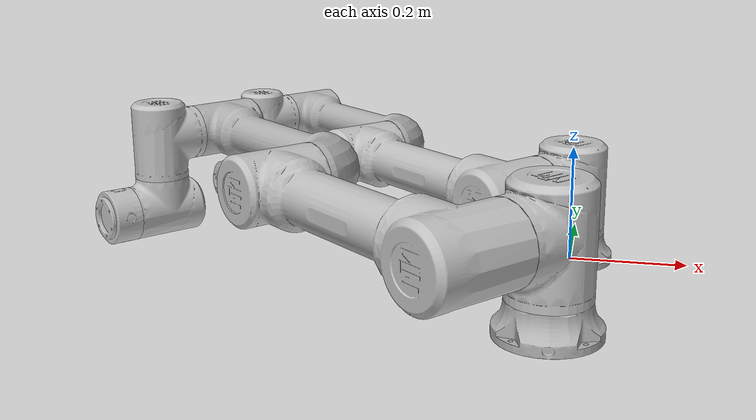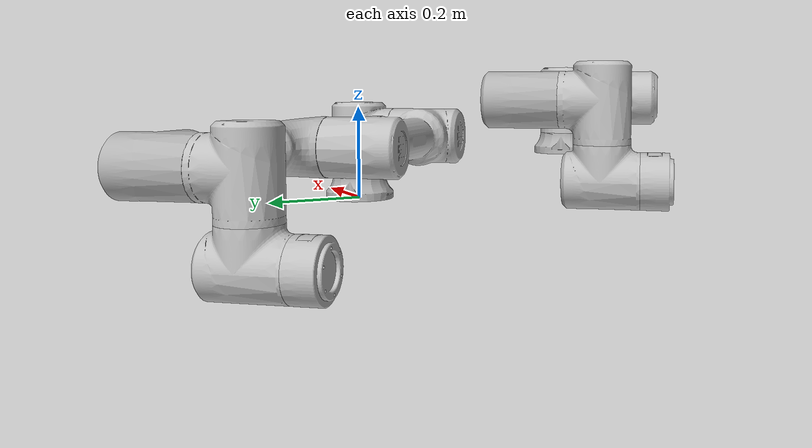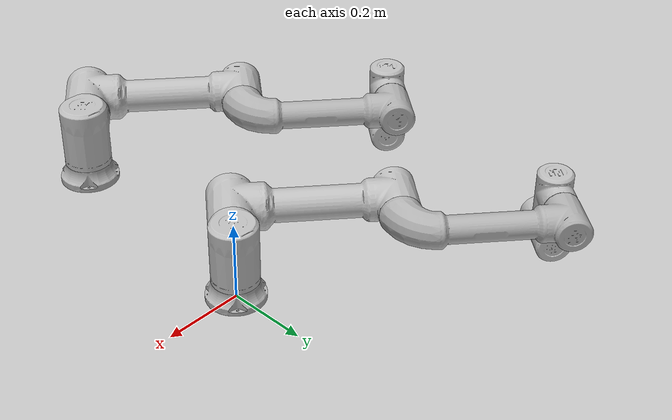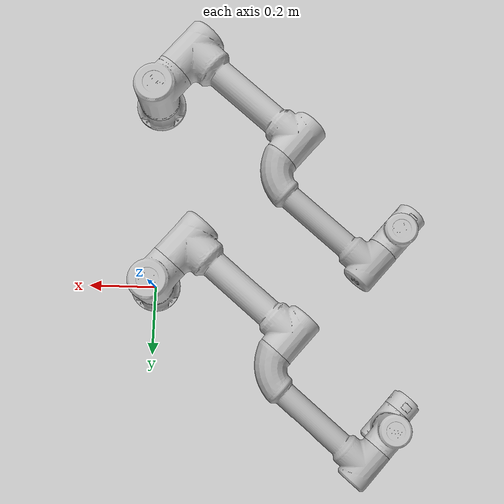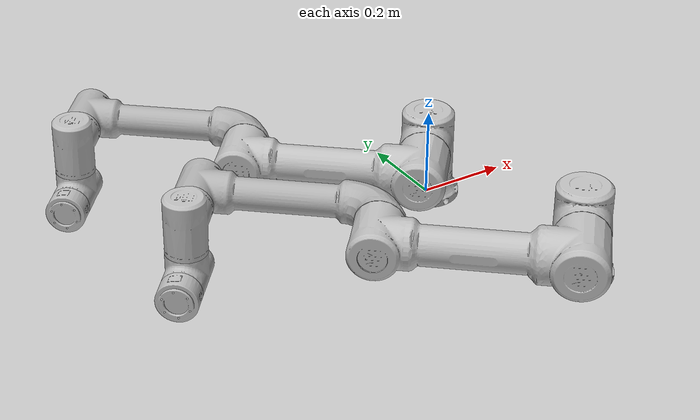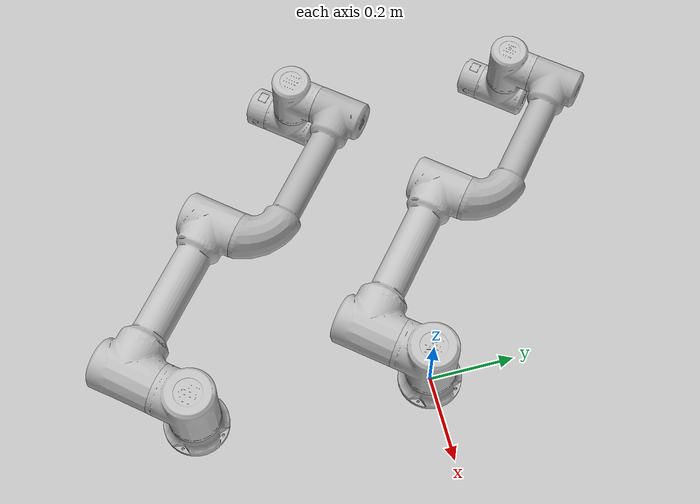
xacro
<?xml version="1.0"?>
<robot name="iimt_dual" xmlns:xacro="http://www.ros.org/wiki/xacro">
  <xacro:arg name="left_base_xyz" default="-0.0008297 -0.5380000 0.0818739"/>
  <xacro:arg name="left_base_rpy" default="0 0 -0.6981317008"/>
  <!-- Mounts from workspace robot.urdf, with world = its root.
       Right base pose is RELATIVE TO LEFT BASE: inverse(T_root_left) * T_root_right. -->
  <xacro:arg name="right_base_xyz" default="-0.345440489323 0.411679944176 -0.082000000000"/>
  <xacro:arg name="right_base_rpy" default="0 0 0"/>
  <xacro:include filename="$(find iimt_dual_description)/urdf/ci05_arm.xacro"/>
  <link name="world"/>
  <xacro:ci05_arm prefix="left_"/>
  <xacro:ci05_arm prefix="right_"/>
  <joint name="world_to_left_base" type="fixed">
    <parent link="world"/><child link="left_base_link"/>
    <origin xyz="$(arg left_base_xyz)" rpy="$(arg left_base_rpy)"/>
  </joint>
  <joint name="left_to_right_base" type="fixed">
    <parent link="left_base_link"/><child link="right_base_link"/>
    <origin xyz="$(arg right_base_xyz)" rpy="$(arg right_base_rpy)"/>
  </joint>
</robot>

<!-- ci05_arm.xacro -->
<!-- Geometry copied from the verified single-arm iimt5.urdf; no hardware blocks. -->
<robot xmlns:xacro="http://www.ros.org/wiki/xacro">
<xacro:macro name="ci05_arm" params="prefix">
  <link name="${prefix}base_link">
    <inertial>
      <origin xyz="-0.00059464 -0.00060418 0.020571" rpy="0 0 0" />
      <mass value="1.1424" />
      <inertia ixx="0.0019632" ixy="2.3301E-05" ixz="-8.7193E-06" iyy="0.0019628" iyz="-8.9679E-06" izz="0.0033635" />
    </inertial>
    <visual>
      <origin xyz="0 0 0" rpy="0 0 0" />
      <geometry>
        <mesh filename="package://iimt_ros2_description/meshes/iimt5/visual/base_link.dae" />
      </geometry>
      <material name="">
        <color rgba="0.69804 0.69804 0.69804 1" />
      </material>
    </visual>
    <collision>
      <origin xyz="0 0 0" rpy="0 0 0" />
      <geometry>
        <mesh filename="package://iimt_ros2_description/meshes/iimt5/collision/base_link.stl" />
      </geometry>
    </collision>
  </link>
  <link name="${prefix}shoulder_link">
    <inertial>
      <origin xyz="0.00023806 -0.0054616 -0.027849" rpy="0 0 0" />
      <mass value="4.7527" />
      <inertia ixx="0.0043887" ixy="-8.5565E-06" ixz="-8.1251E-06" iyy="0.0043683" iyz="0.00023986" izz="0.0061208" />
    </inertial>
    <visual>
      <origin xyz="0 0 0" rpy="0 0 0" />
      <geometry>
        <mesh filename="package://iimt_ros2_description/meshes/iimt5/visual/shoulder_link.dae" />
      </geometry>
      <material name="">
        <color rgba="0.75294 0.75294 0.75294 1" />
      </material>
    </visual>
    <collision>
      <origin xyz="0 0 0" rpy="0 0 0" />
      <geometry>
        <mesh filename="package://iimt_ros2_description/meshes/iimt5/collision/shoulder_link.stl" />
      </geometry>
    </collision>
  </link>
  <joint name="${prefix}shoulder_joint" type="revolute">
    <origin xyz="0 0 0.139" rpy="0 0 0" />
    <parent link="${prefix}base_link" />
    <child link="${prefix}shoulder_link" />
    <axis xyz="0 0 1" />
    <limit lower="-6.2832" upper="6.2832" effort="130" velocity="3.14" />
  </joint>
  <link name="${prefix}upper_arm_link">
    <inertial>
      <origin xyz="-0.16754 -1.0507E-05 0.13275" rpy="0 0 0" />
      <mass value="9.0173" />
      <inertia ixx="0.0082644" ixy="5.4662E-06" ixz="6.8958E-05" iyy="0.015153" iyz="-2.8896E-06" izz="0.017899" />
    </inertial>
    <visual>
      <origin xyz="0 0 0" rpy="0 0 0" />
      <geometry>
        <mesh filename="package://iimt_ros2_description/meshes/iimt5/visual/upper_arm_link.dae" />
      </geometry>
      <material name="">
        <color rgba="0.75294 0.75294 0.75294 1" />
      </material>
    </visual>
    <collision>
      <origin xyz="0 0 0" rpy="0 0 0" />
      <geometry>
        <mesh filename="package://iimt_ros2_description/meshes/iimt5/collision/upper_arm_link.stl" />
      </geometry>
    </collision>
  </link>
  <joint name="${prefix}upper_arm_joint" type="revolute">
    <origin xyz="0 0 0" rpy="1.5708 0 0" />
    <parent link="${prefix}shoulder_link" />
    <child link="${prefix}upper_arm_link" />
    <axis xyz="0 0 1" />
    <limit lower="-2.6167" upper="2.6167" effort="156" velocity="2.6167" />
  </joint>
  <link name="${prefix}forearm_link">
    <inertial>
      <origin xyz="-0.26237 -0.00025322 0.032714" rpy="0 0 0" />
      <mass value="3.2477" />
      <inertia ixx="0.0030652" ixy="-8.0411E-07" ixz="-0.0014119" iyy="0.018146" iyz="-4.9842E-06" izz="0.018357" />
    </inertial>
    <visual>
      <origin xyz="0 0 0" rpy="0 0 0" />
      <geometry>
        <mesh filename="package://iimt_ros2_description/meshes/iimt5/visual/fore_arm_link.dae" />
      </geometry>
      <material name="">
        <color rgba="0.69804 0.69804 0.69804 1" />
      </material>
    </visual>
    <collision>
      <origin xyz="0 0 0" rpy="0 0 0" />
      <geometry>
        <mesh filename="package://iimt_ros2_description/meshes/iimt5/collision/fore_arm_link.stl" />
      </geometry>
    </collision>
  </link>
  <joint name="${prefix}forearm_joint" type="revolute">
    <origin xyz="-0.3945 0 0" rpy="0 0 0" />
    <parent link="${prefix}upper_arm_link" />
    <child link="${prefix}forearm_link" />
    <axis xyz="0 0 1" />
    <limit lower="-2.8783" upper="2.8783" effort="95" velocity="3.14" />
  </joint>
  <link name="${prefix}wrist_1_link">
    <inertial>
      <origin xyz="-0.00045661 -0.018467 -0.0060117" rpy="0 0 0" />
      <mass value="1.7863" />
      <inertia ixx="0.0011898" ixy="5.178E-06" ixz="2.3072E-06" iyy="0.0015106" iyz="0.00010468" izz="0.0011292" />
    </inertial>
    <visual>
      <origin xyz="0 0 0" rpy="0 0 0" />
      <geometry>
        <mesh filename="package://iimt_ros2_description/meshes/iimt5/visual/wrist_1_link.dae" />
      </geometry>
      <material name="">
        <color rgba="0.75294 0.75294 0.75294 1" />
      </material>
    </visual>
    <collision>
      <origin xyz="0 0 0" rpy="0 0 0" />
      <geometry>
        <mesh filename="package://iimt_ros2_description/meshes/iimt5/collision/wrist_1_link.stl" />
      </geometry>
    </collision>
  </link>
  <joint name="${prefix}wrist_1_joint" type="revolute">
    <origin xyz="-0.381 0 0.143" rpy="0 0 0" />
    <parent link="${prefix}forearm_link" />
    <child link="${prefix}wrist_1_link" />
    <axis xyz="0 0 1" />
    <limit lower="-3.0528" upper="3.0528" effort="35" velocity="3.14" />
  </joint>
  <link name="${prefix}wrist_2_link">
    <inertial>
      <origin xyz="0.00045661 0.018467 -0.0060117" rpy="0 0 0" />
      <mass value="1.7863" />
      <inertia ixx="0.0011898" ixy="5.178E-06" ixz="-2.3072E-06" iyy="0.0015106" iyz="-0.00010468" izz="0.0011292" />
    </inertial>
    <visual>
      <origin xyz="0 0 0" rpy="0 0 0" />
      <geometry>
        <mesh filename="package://iimt_ros2_description/meshes/iimt5/visual/wrist_2_link.dae" />
      </geometry>
      <material name="">
        <color rgba="0.75294 0.75294 0.75294 1" />
      </material>
    </visual>
    <collision>
      <origin xyz="0 0 0" rpy="0 0 0" />
      <geometry>
        <mesh filename="package://iimt_ros2_description/meshes/iimt5/collision/wrist_2_link.stl" />
      </geometry>
    </collision>
  </link>
  <joint name="${prefix}wrist_2_joint" type="revolute">
    <origin xyz="0 -0.1245 0" rpy="1.5708 0 0" />
    <parent link="${prefix}wrist_1_link" />
    <child link="${prefix}wrist_2_link" />
    <axis xyz="0 0 1" />
    <limit lower="-3.0528" upper="3.0528" effort="35" velocity="3.14" />
  </joint>
  <link name="${prefix}wrist_3_link">
    <inertial>
      <origin xyz="-2.766E-05 2.1119E-05 -0.01581" rpy="0 0 0" />
      <mass value="0.42423" />
      <inertia ixx="0.00031444" ixy="1.1817E-07" ixz="8.2188E-09" iyy="0.00029777" iyz="-4.0228E-08" izz="0.00049472" />
    </inertial>
    <visual>
      <origin xyz="0 0 0" rpy="0 0 0" />
      <geometry>
        <mesh filename="package://iimt_ros2_description/meshes/iimt5/visual/wrist_3_link.dae" />
      </geometry>
      <material name="">
        <color rgba="0.75294 0.75294 0.75294 1" />
      </material>
    </visual>
    <collision>
      <origin xyz="0 0 0" rpy="0 0 0" />
      <geometry>
        <mesh filename="package://iimt_ros2_description/meshes/iimt5/collision/wrist_3_link.stl" />
      </geometry>
    </collision>
  </link>
  <joint name="${prefix}wrist_3_joint" type="revolute">
    <origin xyz="0 0.103 0" rpy="-1.5708 0 0" />
    <parent link="${prefix}wrist_2_link" />
    <child link="${prefix}wrist_3_link" />
    <axis xyz="0 0 -1" />
    <limit lower="-6.2832" upper="6.2832" effort="35" velocity="3.14" />
  </joint>
</xacro:macro>
</robot>
